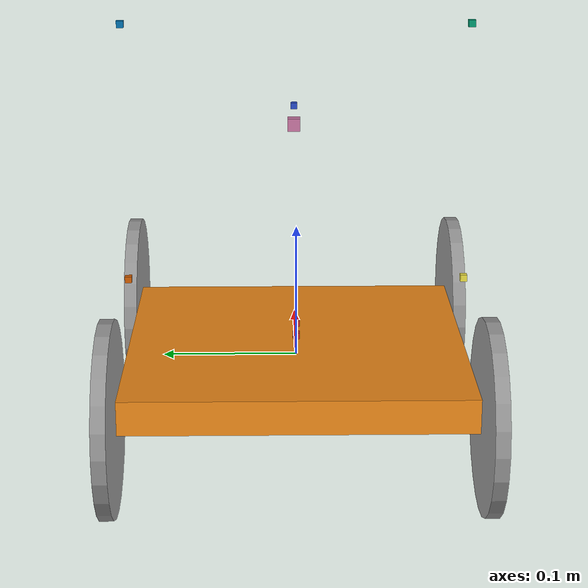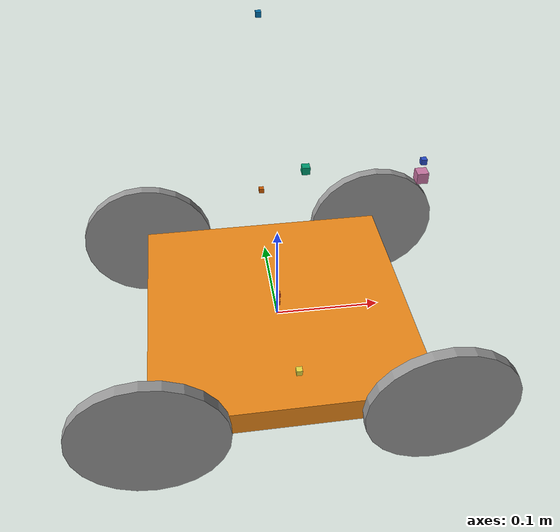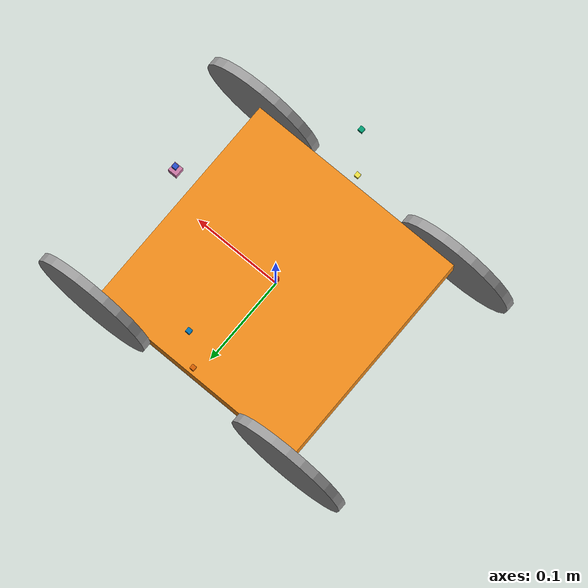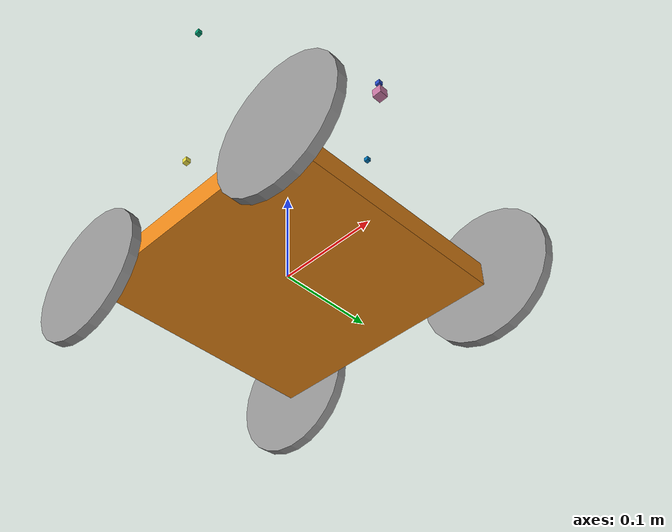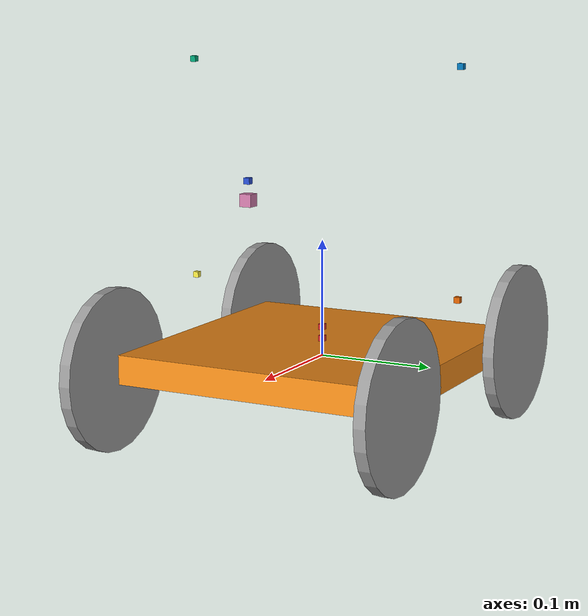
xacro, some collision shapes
<?xml version="1.0" ?>
<robot name="robot" xmlns:xacro="http://www.ros.org/wiki/xacro">

<!--including plugins-->
<xacro:include filename="$(find att)/urdf/robot_plugin.gazebo" />

<!--using xacro to set values of camera-->
  <xacro:property name="camera_size" value="0.005"/>
  <xacro:property name="camera_origin_x" value="0.125"/>
  <xacro:property name="camera_origin_y" value="0"/>
  <xacro:property name="camera_origin_z" value="0.15"/>

  <xacro:property name="height3" value="1" />
  <xacro:property name="axel_offset" value="0.05" />

<!--using xacro to set values of chassis-->
  <xacro:property name="mower_inertia_xx" value="0.026302083" />
  <xacro:property name="mower_inertia_yy" value="0.026302083" />
  <xacro:property name="mower_inertia_zz" value="0.052083333"/>
  <xacro:property name="mower_frame_width" value="0.25" />
  <xacro:property name="mower_frame_length" value="0.25" />
  <xacro:property name="mower_frame_height" value="0.025" />

<!--using xacro to set values of link wheel inertia -->
  <xacro:property name="wheel_inertia_xx" value="0.0002379947917" />
  <xacro:property name="wheel_inertia_yy" value="0.0002379947917" />
  <xacro:property name="wheel_inertia_zz" value="0.00047265625"/>

<!--using xacro to set values of wheel dimensions-->
  <xacro:property name="wheel_length" value="0.01" />
  <xacro:property name="wheel_radius" value="0.06875" />
  <xacro:property name="wheel_mass" value="0.2" />

<!--using xacro to set values of laser-->
  <xacro:property name="laser_size" value="0.01"/>
  <xacro:property name="laser_origin_x" value="0.125"/>
  <xacro:property name="laser_origin_y" value="0"/>
  <xacro:property name="laser_origin_z" value="0.15"/>

<!--using xacro to set values of IMU-->
  <xacro:property name="IMU_size" value="0.005"/>
  <xacro:property name="IMU_origin_x" value="0"/>
  <xacro:property name="IMU_origin_y" value="0"/>
  <xacro:property name="IMU_origin_z" value="0.015"/>

<!--using xacro to set values of GPS-->
  <xacro:property name="GPS_size" value="0.005"/>
  <xacro:property name="GPS_origin_x" value="0"/>
  <xacro:property name="GPS_origin_y" value="0"/>
  <xacro:property name="GPS_origin_z" value="0.025"/>

<!--using xacro to set values of kinect-->
  <xacro:property name="kinect_size" value="${camera_size}"/>
  <xacro:property name="kinect_origin_x" value="0.125"/>
  <xacro:property name="kinect_origin_y" value="0"/>
  <xacro:property name="kinect_origin_z" value="0.165"/>

<!--using xacro to set values of sonar-->
  <xacro:property name="sonar_size" value="0.005"/>

<!--using xacro to set values of sonar ir front-->
  <xacro:property name="sonar_ir_front_origin_x" value="0"/>
  <xacro:property name="sonar_ir_front_origin_y" value="-0.125"/>
  <xacro:property name="sonar_ir_front_origin_z" value="0.25"/>

<!--using xacro to set values of sonar front -->

  <xacro:property name="sonar_front_origin_x" value="0"/>
  <xacro:property name="sonar_front_origin_y" value="-0.125"/>
  <xacro:property name="sonar_front_origin_z" value="0.06"/>

  <!--using xacro to set values of sonar ir left-->
  <xacro:property name="sonar_ir_left_origin_x" value="0"/>
  <xacro:property name="sonar_ir_left_origin_y" value="0.125"/>
  <xacro:property name="sonar_ir_left_origin_z" value="0.25"/>

<!--using xacro to set values of sonar left -->

  <xacro:property name="sonar_left_origin_x" value="0"/>
  <xacro:property name="sonar_left_origin_y" value="0.125"/>
  <xacro:property name="sonar_left_origin_z" value="0.06"/>

  <!-- chassis -->
  <link name="link_chassis">

    <pose>0 0 0 0 0 0</pose>
    <inertial>
      <mass value="5"/>
      <origin rpy="0 0 0" xyz="0 0 0.08125"/>
      <inertia ixx="${mower_inertia_xx}" ixy="0" ixz="0" iyy="${mower_inertia_yy}" iyz="0" izz="${mower_inertia_zz}"/>
    </inertial>

    <collision name="collision_chassis">
      <origin rpy="0 0 0" xyz="0 0 0"/>
      <geometry>
        <box size="${mower_frame_length} ${mower_frame_width} ${mower_frame_height}"/>
      </geometry>
    </collision>
    <visual>
      <origin rpy="0 0 0" xyz="0 0 0"/>
      <geometry>
        <box size="${mower_frame_length} ${mower_frame_width} ${mower_frame_height}"/>
      </geometry>
    </visual>
  </link>

  <!-- link_rear_right_wheel -->
  <link name="link_right_wheel">
    <inertial>
      <mass value="0.2"/>
      <cylinder_inertia m="0.2" r="0.06875" h="0.01"/>
      <origin rpy="0 1.5707 1.5707" xyz="0 0 0"/>
      <inertia ixx="${wheel_inertia_xx}" ixy="0" ixz="0" iyy="${wheel_inertia_yy}" iyz="0" izz="${wheel_inertia_zz}"/>
    </inertial>

    <collision name="link_right_wheel_collision">
      <origin rpy="0 1.5707 1.5707" xyz="0 0 0"/>
      <geometry>
        <cylinder length="${wheel_length}" radius="${wheel_radius}"/>
      </geometry>
    </collision>
    <visual name="link_right_wheel_visual">
      <origin rpy="0 1.5707 1.5707" xyz="0 0 0"/>
      <geometry>
        <cylinder length="${wheel_length}" radius="${wheel_radius}"/>
      </geometry>
    </visual>
  </link>

  <joint name="joint_right_wheel" type="continuous">
    <origin rpy="0 0 0" xyz="-0.125 0.13 0"/>
    <child link="link_right_wheel"/>
    <parent link="link_chassis"/>
    <axis rpy="0 0 0" xyz="0 1 0"/>
    <limit effort="100" velocity="100"/>
    <joint_properties damping="0" friction="1.0"/>
  </joint>

<!-- link_rear_left_wheel -->

  <link name="link_left_wheel">
    <inertial>
      <mass value="0.2"/>
        <cylinder_inertia m="0.2" r="0.06875" h="0.01"/>
      <origin rpy="0 1.5707 1.5707" xyz="0 0 0"/>
      <inertia ixx="${wheel_inertia_xx}" ixy="0" ixz="0" iyy="${wheel_inertia_yy}" iyz="0" izz="${wheel_inertia_zz}"/>
    </inertial>

    <collision name="link_left_wheel_collision">
      <origin rpy="0 1.5707 1.5707" xyz="0 0 0"/>
      <geometry>
        <cylinder length="${wheel_length}" radius="${wheel_radius}"/>
      </geometry>
    </collision>
    <visual name="link_left_wheel_visual">
      <origin rpy="0 1.5707 1.5707" xyz="0 0 0"/>
      <geometry>
        <cylinder length="${wheel_length}" radius="${wheel_radius}"/>
      </geometry>
    </visual>
  </link>

  <joint name="joint_left_wheel" type="continuous">
    <origin rpy="0 0 0" xyz="-0.125 -0.13 0"/>
    <child link="link_left_wheel"/>
    <parent link="link_chassis"/>
    <axis rpy="0 0 0" xyz="0 1 0"/>
    <limit effort="100" velocity="100"/>
    <joint_properties damping="0" friction="1.0"/>
  </joint>

<!-- link_front_right_wheel -->
   <link name="link_right_wheel_front">
    <inertial>
      <mass value="0.2"/>
      <cylinder_inertia m="0.2" r="0.06875" h="0.01"/>
      <origin rpy="0 1.5707 1.5707" xyz="0 0 0"/>
      <inertia ixx="${wheel_inertia_xx}" ixy="0" ixz="0" iyy="${wheel_inertia_yy}" iyz="0" izz="${wheel_inertia_zz}"/>
    </inertial>

    <collision name="link_right_wheel_front_collision">
      <origin rpy="0 1.5707 1.5707" xyz="0 0 0"/>
      <geometry>
        <cylinder length="${wheel_length}" radius="${wheel_radius}"/>
      </geometry>
    </collision>
    <visual name="link_right_wheel_front_visual">
      <origin rpy="0 1.5707 1.5707" xyz="0 0 0"/>
      <geometry>
        <cylinder length="${wheel_length}" radius="${wheel_radius}"/>
      </geometry>
    </visual>
  </link>

  <joint name="joint_right_wheel_front" type="continuous">
    <origin rpy="0 0 0" xyz="0.125 0.13 0"/>
    <child link="link_right_wheel_front"/>
    <parent link="link_chassis"/>
    <axis rpy="0 0 0" xyz="0 1 0"/>
    <limit effort="100" velocity="100"/>
    <joint_properties damping="0" friction="1.0"/>
  </joint>

<!-- link_front_left_wheel -->
  <link name="link_left_wheel_front">
    <inertial>
      <mass value="0.2"/>
      <cylinder_inertia m="0.2" r="0.06875" h="0.01"/>
      <origin rpy="0 1.5707 1.5707" xyz="0 0 0"/>
      <inertia ixx="${wheel_inertia_xx}" ixy="0" ixz="0" iyy="${wheel_inertia_yy}" iyz="0" izz="${wheel_inertia_zz}"/>
    </inertial>

    <collision name="link_left_wheel_front_collision">
      <origin rpy="0 1.5707 1.5707" xyz="0 0 0"/>
      <geometry>
        <cylinder length="${wheel_length}" radius="${wheel_radius}"/>
      </geometry>

    </collision>
    <visual name="link_left_wheel_front_visual">
      <origin rpy="0 1.5707 1.5707" xyz="0 0 0"/>
      <geometry>
        <cylinder length="${wheel_length}" radius="${wheel_radius}"/>
      </geometry>

    </visual>
  </link>

  <joint name="joint_left_wheel_front" type="continuous">
    <origin rpy="0 0 0" xyz="0.125 -0.13 0"/>
    <child link="link_left_wheel_front"/>
    <parent link="link_chassis"/>
    <axis rpy="0 0 0" xyz="0 1 0"/>
    <limit effort="100" velocity="100"/>
    <joint_properties damping="0" friction="1.0"/>
  </joint>

<!--CAMERA-->
<link name="camera">
    <visual>
      <geometry>
        <box size="${camera_size} ${camera_size} ${camera_size}"/>
      </geometry>
      <material name="blue"/>
    </visual>
    <collision>
      <geometry>
        <box size="${camera_size} ${camera_size} ${camera_size}"/>
      </geometry>
    </collision>

    <inertial>
      <mass value="1e-5" />
      <origin xyz="0 0 0" rpy="0 0 0"/>
      <inertia ixx="1e-6" ixy="0" ixz="0" iyy="1e-6" iyz="0" izz="1e-6" />
    </inertial>

  </link>

  <joint name="camera_joint" type="fixed">
    <origin xyz="${camera_origin_x} ${camera_origin_y} ${camera_origin_z}" rpy="0 0 0"/>
    <parent link="link_chassis"/>
    <child link="camera"/>
  </joint>

  <!--LASER SCANNER-->
   <link name="hokuyo_link">
    <collision>
      <origin xyz="0 0 0" rpy="0 0 0"/>
      <geometry>
    <box size="${laser_size} ${laser_size} ${laser_size}"/>
      </geometry>
    </collision>

    <visual>
      <origin xyz="0 0 0" rpy="0 0 0"/>
      <geometry>
        <mesh filename="package://group_task2/meshes/hokuyo.dae" scale="0.3 0.3 0.3"/>

      </geometry>
    </visual>

    <inertial>
      <mass value="1e-5" />
      <origin xyz="0 0 0" rpy="0 0 0"/>
      <inertia ixx="1e-6" ixy="0" ixz="0" iyy="1e-6" iyz="0" izz="1e-6" />
    </inertial>
  </link>
    <joint name="hokuyo_joint" type="fixed">
    <axis xyz="0 1 0" />
    <origin xyz="${laser_origin_x} ${laser_origin_y} ${laser_origin_z}" rpy="0 0 0"/>
    <parent link="link_chassis"/>
    <child link="hokuyo_link"/>
  </joint>

<!--IMU SENSOR-->

<link name="imu_link">
  <inertial>
    <mass value="0.001"/>
    <origin rpy="0 0 0" xyz="0 0 0"/>
    <inertia ixx="0.0001" ixy="0" ixz="0" iyy="0.000001" iyz="0" izz="0.0001"/>
  </inertial>
  <visual>
    <origin rpy="0 0 0" xyz="0 0 0"/>
    <geometry>
      <box size="${IMU_size} ${IMU_size} ${IMU_size}"/>
    </geometry>
    <material name="red"/>
  </visual>
  <collision>
    <origin rpy="0 0 0" xyz="0 0 0"/>
    <geometry>
      <box size="${IMU_size} ${IMU_size} ${IMU_size}"/>
    </geometry>
  </collision>
</link>
<joint name="imu_joint" type="fixed">
    <axis xyz="1 0 0"/>
    <origin xyz="${IMU_origin_x} ${IMU_origin_y} ${IMU_origin_z}"/>
    <parent link="link_chassis"/>
    <child link="imu_link"/>
  </joint>

<!--GPS SENSOR-->
<link name="gps_link">
  <inertial>
    <mass value="0.001"/>
    <origin rpy="0 0 0" xyz="0 0 0"/>
    <inertia ixx="0.0001" ixy="0" ixz="0" iyy="0.000001" iyz="0" izz="0.0001"/>
  </inertial>
  <visual>
    <origin rpy="0 0 0" xyz="0 0 0"/>
    <geometry>
      <box size="${GPS_size} ${GPS_size} ${GPS_size}"/>
    </geometry>
    <material name="red"/>
  </visual>
  <collision>
    <origin rpy="0 0 0" xyz="0 0 0"/>
    <geometry>
      <box size="${GPS_size} ${GPS_size} ${GPS_size}"/>
    </geometry>
  </collision>
</link>
<joint name="gps_joint" type="fixed">
    <axis xyz="0.25 0 0"/>
    <origin xyz="${GPS_origin_x} ${GPS_origin_y} ${GPS_origin_z}"/>
    <parent link="link_chassis"/>
    <child link="gps_link"/>
  </joint>

<!--KINECT-->

<link name="kinect_link">
    <visual>
      <geometry>
        <box size="${kinect_size} ${kinect_size} ${kinect_size}"/>
      </geometry>
      <material name="blue"/>
    </visual>
    <collision>
      <geometry>
        <box size="${kinect_size} ${kinect_size} ${kinect_size}"/>
      </geometry>
    </collision>

    <inertial>
      <mass value="1e-5" />
      <origin xyz="0 0 0" rpy="0 0 0"/>
      <inertia ixx="1e-6" ixy="0" ixz="0" iyy="1e-6" iyz="0" izz="1e-6" />
    </inertial>

  </link>

  <joint name="kinect_joint" type="fixed">
    <origin xyz="${kinect_origin_x} ${kinect_origin_y} ${kinect_origin_z}" rpy="0 0 0"/>
    <parent link="link_chassis"/>
    <child link="kinect_link"/>

  </joint>

  <!--SONAR right-->
  <joint name="ir_front_joint" type="fixed">
    <axis xyz="0 1 0" />
    <origin rpy="0 0 -1.5708" xyz="${sonar_ir_front_origin_x} ${sonar_ir_front_origin_y} ${sonar_ir_front_origin_z}" />
    <parent link="link_chassis"/>
    <child link="base_ir_front"/>
</joint>
<link name="base_ir_front">
    <collision>
      <origin xyz="0 0 0" rpy="0 0 1.5708"/>
      <geometry>
        <box size="${sonar_size} ${sonar_size} ${sonar_size}"/>
      </geometry>
    </collision>
    <visual>
      <origin xyz="0 0 0" rpy="0 0 1.5708"/>
      <geometry>
        <box size="${sonar_size} ${sonar_size} ${sonar_size}"/>
      </geometry>
    </visual>
    <inertial>
      <mass value="1e-5" />
      <origin xyz="0 0 0" rpy="0 0 1.5708"/>
      <inertia ixx="1e-6" ixy="0" ixz="0" iyy="1e-6" iyz="0"      izz="1e-6" />
    </inertial>
</link>
<joint name="sonar_front_joint" type="fixed">
    <axis xyz="0 1 0" />
    <origin rpy="0 0 -1.5708" xyz="${sonar_front_origin_x} ${sonar_front_origin_y} ${sonar_front_origin_z}" />
    <parent link="link_chassis"/>
    <child link="base_sonar_front"/>
</joint>
<link name="base_sonar_front">
    <collision>
      <origin xyz="0 0 0" rpy="0 0 1.5708"/>
      <geometry>
        <box size="${sonar_size} ${sonar_size} ${sonar_size}"/>
      </geometry>
    </collision>
    <visual>
      <origin xyz="0 0 0" rpy="0 0 1.5708"/>
      <geometry>
        <box size="${sonar_size} ${sonar_size} ${sonar_size}"/>
      </geometry>
    </visual>
    <inertial>
      <mass value="1e-5" />
      <origin xyz="0 0 0" rpy="0 0 1.5708"/>
      <inertia ixx="1e-6" ixy="0" ixz="0" iyy="1e-6" iyz="0" izz="1e-6" />
    </inertial>
 </link>

   <!--SONAR Left-->
  <joint name="ir_left_joint" type="fixed">
    <axis xyz="0 1 0" />
    <origin rpy="0 0 1.5708" xyz="${sonar_ir_left_origin_x} ${sonar_ir_left_origin_y} ${sonar_ir_left_origin_z}" />
    <parent link="link_chassis"/>
    <child link="base_ir_left"/>
</joint>
<link name="base_ir_left">
    <collision>
      <origin xyz="0 0 0" rpy="0 0 0"/>
      <geometry>
        <box size="${sonar_size} ${sonar_size} ${sonar_size}"/>
      </geometry>
    </collision>
    <visual>
      <origin xyz="0 0 0" rpy="0 0 0"/>
      <geometry>
        <box size="${sonar_size} ${sonar_size} ${sonar_size}"/>
      </geometry>
    </visual>
    <inertial>
      <mass value="1e-5" />
      <origin xyz="0 0 0" rpy="0 0 0"/>
      <inertia ixx="1e-6" ixy="0" ixz="0" iyy="1e-6" iyz="0"      izz="1e-6" />
    </inertial>
</link>
<joint name="sonar_left_joint" type="fixed">
    <axis xyz="0 1 0" />
    <origin rpy="0 0 1.5708" xyz="${sonar_left_origin_x} ${sonar_left_origin_y} ${sonar_left_origin_z}" />
    <parent link="link_chassis"/>
    <child link="base_sonar_left"/>
</joint>
<link name="base_sonar_left">
    <collision>
      <origin xyz="0 0 0" rpy="0 0 0"/>
      <geometry>
        <box size="${sonar_size} ${sonar_size} ${sonar_size}"/>
      </geometry>
    </collision>
    <visual>
      <origin xyz="0 0 0" rpy="0 0 0"/>
      <geometry>
        <box size="${sonar_size} ${sonar_size} ${sonar_size}"/>
      </geometry>
    </visual>
    <inertial>
      <mass value="1e-5" />
      <origin xyz="0 0 0" rpy="0 0 0"/>
      <inertia ixx="1e-6" ixy="0" ixz="0" iyy="1e-6" iyz="0" izz="1e-6" />
    </inertial>
 </link>

</robot>
